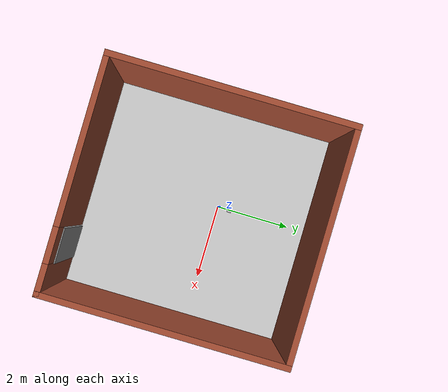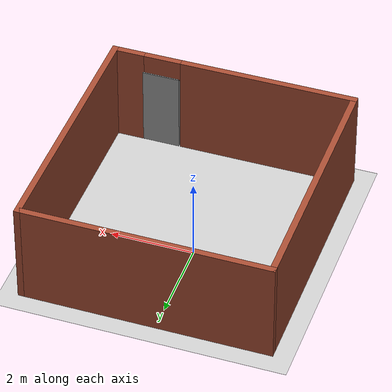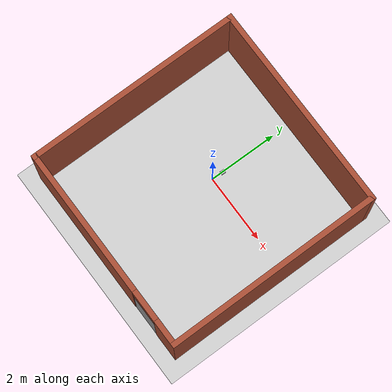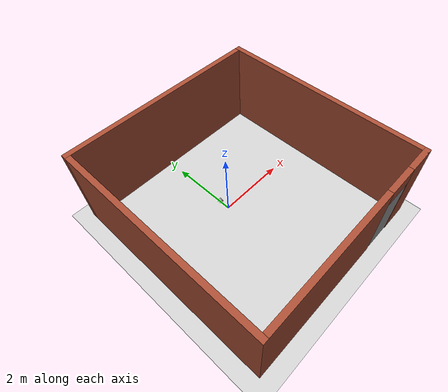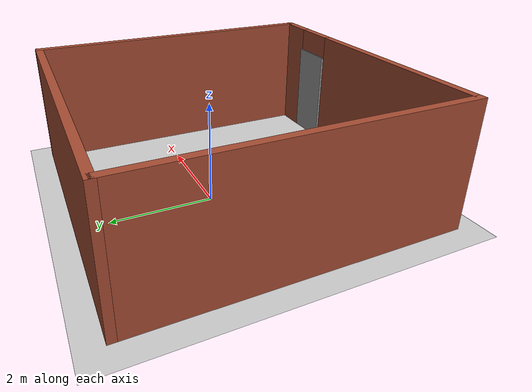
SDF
<sdf version="1.7">
 <world name="default">
  <light name="sun" type="directional">
   <pose>0 0 10 0 -0 0</pose>
   <diffuse>0.8 0.8 0.8 1</diffuse>
   <specular>0.2 0.2 0.2 1</specular>
   <attenuation>
    <range>1000</range>
    <constant>0.9</constant>
    <linear>0.01</linear>
    <quadratic>0.001</quadratic>
   </attenuation>
   <direction>-0.5 0.1 -0.9</direction>
   <spot><inner_angle>0</inner_angle><outer_angle>0</outer_angle><falloff>0</falloff></spot>
  </light>
  <model name="ground_plane">
   <static>1</static>
   <link name="link">
    <collision name="collision">
     <geometry><plane><normal>0 0 1</normal><size>100 100</size></plane></geometry>
     <surface><friction><ode><mu>100</mu><mu2>50</mu2></ode></friction></surface>
    </collision>
    <visual name="visual">
     <cast_shadows>0</cast_shadows>
     <geometry><plane><normal>0 0 1</normal><size>100 100</size></plane></geometry>
     <material>
      <script><uri>file://media/materials/scripts/gazebo.material</uri><name>Gazebo/Grey</name></script>
     </material>
    </visual>
   </link>
  </model>
  <gravity>0 0 -9.8</gravity>
  <magnetic_field>6e-06 2.3e-05 -4.2e-05</magnetic_field>
  <atmosphere type="adiabatic"/>
  <physics type="ode">
   <max_step_size>0.001</max_step_size>
   <real_time_factor>1</real_time_factor>
   <real_time_update_rate>1000</real_time_update_rate>
  </physics>
  <scene><ambient>0.4 0.4 0.4 1</ambient><background>0.7 0.7 0.7 1</background><shadows>1</shadows></scene>
  <audio><device>default</device></audio>
  <spherical_coordinates>
   <surface_model>EARTH_WGS84</surface_model>
   <latitude_deg>0</latitude_deg>
   <longitude_deg>0</longitude_deg>
   <elevation>0</elevation>
   <heading_deg>0</heading_deg>
  </spherical_coordinates>
  <model name="Untitled">
   <pose>-2.8231 -0.802565 0 0 -0 0</pose>
   <link name="Wall_17">
    <collision name="Wall_17_Collision">
     <geometry><box><size>6.25 0.15 2.5</size></box></geometry>
     <pose>0 0 1.25 0 -0 0</pose>
    </collision>
    <visual name="Wall_17_Visual">
     <pose>0 0 1.25 0 -0 0</pose>
     <geometry><box><size>6.25 0.15 2.5</size></box></geometry>
     <material>
      <script><uri>file://media/materials/scripts/gazebo.material</uri><name>Gazebo/Bricks</name></script>
      <ambient>1 1 1 1</ambient>
     </material>
     <meta><layer>0</layer></meta>
    </visual>
    <pose>0.155872 0.298732 0 0 -0 -1.5708</pose>
   </link>
   <link name="Wall_18">
    <pose>3.08087 -2.75127 0 0 -0 0</pose>
    <visual name="Wall_18_Visual_0">
     <pose>-0.860141 0 1.25 0 -0 0</pose>
     <geometry><box><size>4.27972 0.15 2.5</size></box></geometry>
     <material>
      <script><uri>file://media/materials/scripts/gazebo.material</uri><name>Gazebo/Bricks</name></script>
      <ambient>1 1 1 1</ambient>
     </material>
     <meta><layer>0</layer></meta>
    </visual>
    <collision name="Wall_18_Collision_0">
     <geometry><box><size>4.27972 0.15 2.5</size></box></geometry>
     <pose>-0.860141 0 1.25 0 -0 0</pose>
    </collision>
    <visual name="Wall_18_Visual_1">
     <pose>2.58986 0 1.25 0 -0 0</pose>
     <geometry><box><size>0.820282 0.15 2.5</size></box></geometry>
     <material>
      <script><uri>file://media/materials/scripts/gazebo.material</uri><name>Gazebo/Bricks</name></script>
      <ambient>1 1 1 1</ambient>
     </material>
     <meta><layer>0</layer></meta>
    </visual>
    <collision name="Wall_18_Collision_1">
     <geometry><box><size>0.820282 0.15 2.5</size></box></geometry>
     <pose>2.58986 0 1.25 0 -0 0</pose>
    </collision>
    <visual name="Wall_18_Visual_2">
     <pose>1.72972 0 2.25 0 -0 0</pose>
     <geometry><box><size>0.9 0.15 0.5</size></box></geometry>
     <material>
      <script><uri>file://media/materials/scripts/gazebo.material</uri><name>Gazebo/Bricks</name></script>
      <ambient>1 1 1 1</ambient>
     </material>
     <meta><layer>0</layer></meta>
    </visual>
    <collision name="Wall_18_Collision_2">
     <geometry><box><size>0.9 0.15 0.5</size></box></geometry>
     <pose>1.72972 0 2.25 0 -0 0</pose>
    </collision>
   </link>
   <link name="Wall_19">
    <collision name="Wall_19_Collision">
     <geometry><box><size>6.25 0.15 2.5</size></box></geometry>
     <pose>0 0 1.25 0 -0 0</pose>
    </collision>
    <visual name="Wall_19_Visual">
     <pose>0 0 1.25 0 -0 0</pose>
     <geometry><box><size>6.25 0.15 2.5</size></box></geometry>
     <material>
      <script><uri>file://media/materials/scripts/gazebo.material</uri><name>Gazebo/Bricks</name></script>
      <ambient>1 1 1 1</ambient>
     </material>
     <meta><layer>0</layer></meta>
    </visual>
    <pose>6.00587 0.298732 0 0 -0 1.5708</pose>
   </link>
   <link name="Wall_20">
    <collision name="Wall_20_Collision">
     <geometry><box><size>6 0.15 2.5</size></box></geometry>
     <pose>0 0 1.25 0 -0 0</pose>
    </collision>
    <visual name="Wall_20_Visual">
     <pose>0 0 1.25 0 -0 0</pose>
     <geometry><box><size>6 0.15 2.5</size></box></geometry>
     <material>
      <script><uri>file://media/materials/scripts/gazebo.material</uri><name>Gazebo/Bricks</name></script>
      <ambient>1 1 1 1</ambient>
     </material>
     <meta><layer>0</layer></meta>
    </visual>
    <pose>3.08087 3.34873 0 0 -0 3.14159</pose>
   </link>
   <static>1</static>
  </model>
  <model name="Untitled_0">
   <pose>-0.71664 2.7166 0.026996 0 -0 0</pose>
   <link name="Door_1">
    <collision name="Door_1_Collision">
     <geometry><box><size>0.9 0.17 2</size></box></geometry>
     <pose>0 0 1 0 -0 0</pose>
    </collision>
    <visual name="Door_1_Visual">
     <pose>0 0 1 0 -0 0</pose>
     <geometry><box><size>0.9 0.17 2</size></box></geometry>
     <material>
      <script><uri>file://media/materials/scripts/gazebo.material</uri><name>Gazebo/Grey</name></script>
     </material>
    </visual>
    <pose>2.72983 -6.25268 0 0 -0 0</pose>
   </link>
   <static>1</static>
  </model>
  <model name="unit_box">
   <pose>0.010871 0.332184 0.030621 0 0 -0.025797</pose>
   <link name="link">
    <inertial>
     <mass>1</mass>
     <inertia>
      <ixx>0.166667</ixx>
      <ixy>0</ixy>
      <ixz>0</ixz>
      <iyy>0.166667</iyy>
      <iyz>0</iyz>
      <izz>0.166667</izz>
     </inertia>
    </inertial>
    <collision name="collision">
     <geometry><box><size>0.100548 0.119473 0.061242</size></box></geometry>
    </collision>
    <visual name="visual">
     <geometry><box><size>0.100548 0.119473 0.061242</size></box></geometry>
     <material>
      <script><name>Gazebo/Grey</name><uri>file://media/materials/scripts/gazebo.material</uri></script>
     </material>
    </visual>
   </link>
  </model>
  <model name="unit_box_0">
   <pose>0.001705 0.293849 0.081412 1.8e-05 -0.000109 0.009558</pose>
   <link name="link">
    <inertial>
     <mass>1</mass>
     <inertia>
      <ixx>0.166667</ixx>
      <ixy>0</ixy>
      <ixz>0</ixz>
      <iyy>0.166667</iyy>
      <iyz>0</iyz>
      <izz>0.166667</izz>
     </inertia>
    </inertial>
    <collision name="collision">
     <geometry><box><size>0.0210112 0.0316436 0.0403373</size></box></geometry>
    </collision>
    <visual name="visual">
     <geometry><box><size>0.0210112 0.0316436 0.0403373</size></box></geometry>
     <material>
      <script><name>Gazebo/Grey</name><uri>file://media/materials/scripts/gazebo.material</uri></script>
     </material>
    </visual>
   </link>
  </model>
 </world>
</sdf>
